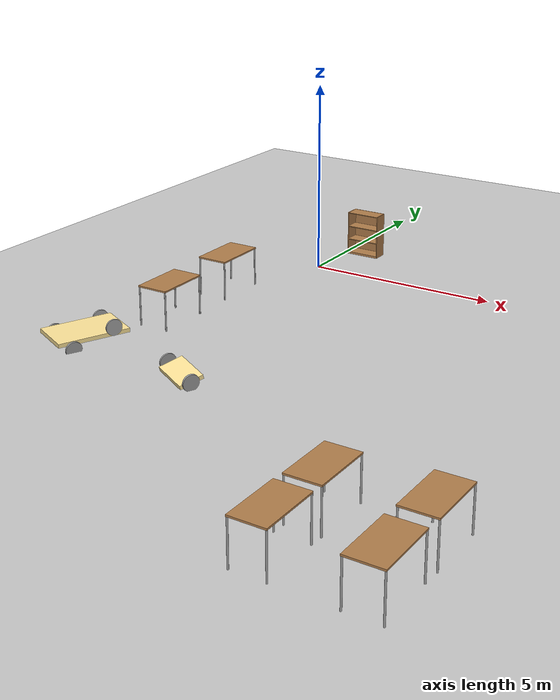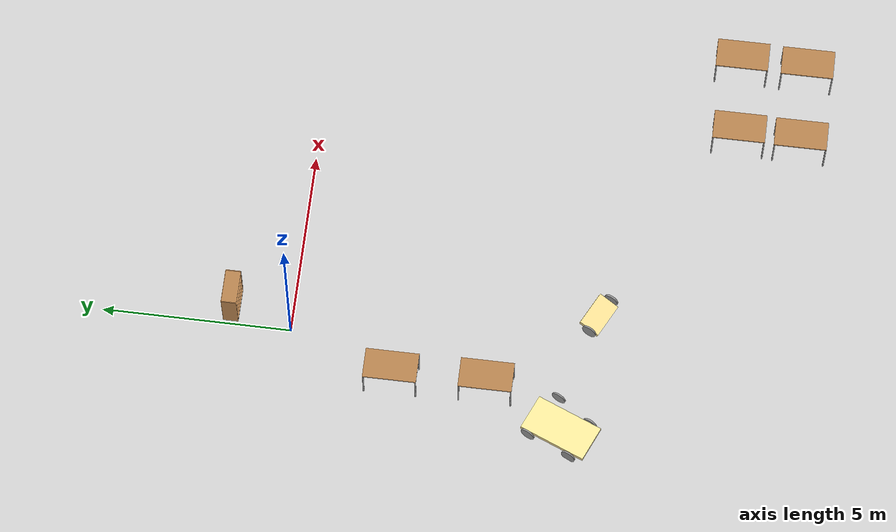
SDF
<sdf version="1.6">
 <world name="default">
  <model name="ground_plane">
   <static>1</static>
   <link name="link">
    <collision name="collision">
     <geometry><plane><normal>0 0 1</normal><size>100 100</size></plane></geometry>
     <surface><friction><ode><mu>100</mu><mu2>50</mu2></ode></friction></surface>
    </collision>
    <visual name="visual">
     <cast_shadows>0</cast_shadows>
     <geometry><plane><normal>0 0 1</normal><size>100 100</size></plane></geometry>
     <material>
      <script><uri>file://media/materials/scripts/gazebo.material</uri><name>Gazebo/Grey</name></script>
     </material>
    </visual>
   </link>
  </model>
  <model name="table_0">
   <static>0</static>
   <link name="link">
    <collision name="surface">
     <pose>0 0 1 0 -0 0</pose>
     <geometry><box><size>1.5 0.8 0.03</size></box></geometry>
     <surface><friction><ode><mu>0.6</mu><mu2>0.6</mu2></ode></friction></surface>
    </collision>
    <visual name="visual1">
     <pose>0 0 1 0 -0 0</pose>
     <geometry><box><size>1.4 0.8 0.04</size></box></geometry>
     <material>
      <script><uri>file://media/materials/scripts/gazebo.material</uri><name>Gazebo/Wood</name></script>
     </material>
    </visual>
    <collision name="front_left_leg">
     <pose>0.68 0.38 0.5 0 -0 0</pose>
     <geometry><cylinder><radius>0.02</radius><length>1</length></cylinder></geometry>
    </collision>
    <visual name="front_left_leg">
     <pose>0.68 0.38 0.5 0 -0 0</pose>
     <geometry><cylinder><radius>0.02</radius><length>1</length></cylinder></geometry>
     <material>
      <script><uri>file://media/materials/scripts/gazebo.material</uri><name>Gazebo/Grey</name></script>
     </material>
    </visual>
    <collision name="front_right_leg">
     <pose>0.68 -0.38 0.5 0 -0 0</pose>
     <geometry><cylinder><radius>0.02</radius><length>1</length></cylinder></geometry>
    </collision>
    <visual name="front_right_leg">
     <pose>0.68 -0.38 0.5 0 -0 0</pose>
     <geometry><cylinder><radius>0.02</radius><length>1</length></cylinder></geometry>
     <material>
      <script><uri>file://media/materials/scripts/gazebo.material</uri><name>Gazebo/Grey</name></script>
     </material>
    </visual>
    <collision name="back_right_leg">
     <pose>-0.68 -0.38 0.5 0 -0 0</pose>
     <geometry><cylinder><radius>0.02</radius><length>1</length></cylinder></geometry>
    </collision>
    <visual name="back_right_leg">
     <pose>-0.68 -0.38 0.5 0 -0 0</pose>
     <geometry><cylinder><radius>0.02</radius><length>1</length></cylinder></geometry>
     <material>
      <script><uri>file://media/materials/scripts/gazebo.material</uri><name>Gazebo/Grey</name></script>
     </material>
    </visual>
    <collision name="back_left_leg">
     <pose>-0.68 0.38 0.5 0 -0 0</pose>
     <geometry><cylinder><radius>0.02</radius><length>1</length></cylinder></geometry>
    </collision>
    <visual name="back_left_leg">
     <pose>-0.68 0.38 0.5 0 -0 0</pose>
     <geometry><cylinder><radius>0.02</radius><length>1</length></cylinder></geometry>
     <material>
      <script><uri>file://media/materials/scripts/gazebo.material</uri><name>Gazebo/Grey</name></script>
     </material>
    </visual>
    <inertial>
     <inertia><ixx>1</ixx><ixy>0</ixy><ixz>0</ixz><iyy>1</iyy><iyz>0</iyz><izz>1</izz></inertia>
     <mass>1</mass>
    </inertial>
   </link>
   <pose>6.80129 -12.7689 -8e-06 1e-06 -0 1.57079</pose>
  </model>
  <model name="table_0_clone">
   <static>0</static>
   <link name="link">
    <collision name="surface">
     <pose>0 0 1 0 -0 0</pose>
     <geometry><box><size>1.5 0.8 0.03</size></box></geometry>
     <surface><friction><ode><mu>0.6</mu><mu2>0.6</mu2></ode></friction></surface>
    </collision>
    <visual name="visual1">
     <pose>0 0 1 0 -0 0</pose>
     <geometry><box><size>1.4 0.8 0.04</size></box></geometry>
     <material>
      <script><uri>file://media/materials/scripts/gazebo.material</uri><name>Gazebo/Wood</name></script>
     </material>
    </visual>
    <collision name="front_left_leg">
     <pose>0.68 0.38 0.5 0 -0 0</pose>
     <geometry><cylinder><radius>0.02</radius><length>1</length></cylinder></geometry>
    </collision>
    <visual name="front_left_leg">
     <pose>0.68 0.38 0.5 0 -0 0</pose>
     <geometry><cylinder><radius>0.02</radius><length>1</length></cylinder></geometry>
     <material>
      <script><uri>file://media/materials/scripts/gazebo.material</uri><name>Gazebo/Grey</name></script>
     </material>
    </visual>
    <collision name="front_right_leg">
     <pose>0.68 -0.38 0.5 0 -0 0</pose>
     <geometry><cylinder><radius>0.02</radius><length>1</length></cylinder></geometry>
    </collision>
    <visual name="front_right_leg">
     <pose>0.68 -0.38 0.5 0 -0 0</pose>
     <geometry><cylinder><radius>0.02</radius><length>1</length></cylinder></geometry>
     <material>
      <script><uri>file://media/materials/scripts/gazebo.material</uri><name>Gazebo/Grey</name></script>
     </material>
    </visual>
    <collision name="back_right_leg">
     <pose>-0.68 -0.38 0.5 0 -0 0</pose>
     <geometry><cylinder><radius>0.02</radius><length>1</length></cylinder></geometry>
    </collision>
    <visual name="back_right_leg">
     <pose>-0.68 -0.38 0.5 0 -0 0</pose>
     <geometry><cylinder><radius>0.02</radius><length>1</length></cylinder></geometry>
     <material>
      <script><uri>file://media/materials/scripts/gazebo.material</uri><name>Gazebo/Grey</name></script>
     </material>
    </visual>
    <collision name="back_left_leg">
     <pose>-0.68 0.38 0.5 0 -0 0</pose>
     <geometry><cylinder><radius>0.02</radius><length>1</length></cylinder></geometry>
    </collision>
    <visual name="back_left_leg">
     <pose>-0.68 0.38 0.5 0 -0 0</pose>
     <geometry><cylinder><radius>0.02</radius><length>1</length></cylinder></geometry>
     <material>
      <script><uri>file://media/materials/scripts/gazebo.material</uri><name>Gazebo/Grey</name></script>
     </material>
    </visual>
    <inertial>
     <inertia><ixx>1</ixx><ixy>0</ixy><ixz>0</ixz><iyy>1</iyy><iyz>0</iyz><izz>1</izz></inertia>
     <mass>1</mass>
    </inertial>
   </link>
   <pose>8.92757 -12.769 0 -1e-06 -0 1.57079</pose>
  </model>
  <model name="table_0_clone_0_clone_0">
   <static>0</static>
   <link name="link">
    <collision name="surface">
     <pose>0 0 1 0 -0 0</pose>
     <geometry><box><size>1.5 0.8 0.03</size></box></geometry>
     <surface><friction><ode><mu>0.6</mu><mu2>0.6</mu2></ode></friction></surface>
    </collision>
    <visual name="visual1">
     <pose>0 0 1 0 -0 0</pose>
     <geometry><box><size>1.4 0.8 0.04</size></box></geometry>
     <material>
      <script><uri>file://media/materials/scripts/gazebo.material</uri><name>Gazebo/Wood</name></script>
     </material>
    </visual>
    <collision name="front_left_leg">
     <pose>0.68 0.38 0.5 0 -0 0</pose>
     <geometry><cylinder><radius>0.02</radius><length>1</length></cylinder></geometry>
    </collision>
    <visual name="front_left_leg">
     <pose>0.68 0.38 0.5 0 -0 0</pose>
     <geometry><cylinder><radius>0.02</radius><length>1</length></cylinder></geometry>
     <material>
      <script><uri>file://media/materials/scripts/gazebo.material</uri><name>Gazebo/Grey</name></script>
     </material>
    </visual>
    <collision name="front_right_leg">
     <pose>0.68 -0.38 0.5 0 -0 0</pose>
     <geometry><cylinder><radius>0.02</radius><length>1</length></cylinder></geometry>
    </collision>
    <visual name="front_right_leg">
     <pose>0.68 -0.38 0.5 0 -0 0</pose>
     <geometry><cylinder><radius>0.02</radius><length>1</length></cylinder></geometry>
     <material>
      <script><uri>file://media/materials/scripts/gazebo.material</uri><name>Gazebo/Grey</name></script>
     </material>
    </visual>
    <collision name="back_right_leg">
     <pose>-0.68 -0.38 0.5 0 -0 0</pose>
     <geometry><cylinder><radius>0.02</radius><length>1</length></cylinder></geometry>
    </collision>
    <visual name="back_right_leg">
     <pose>-0.68 -0.38 0.5 0 -0 0</pose>
     <geometry><cylinder><radius>0.02</radius><length>1</length></cylinder></geometry>
     <material>
      <script><uri>file://media/materials/scripts/gazebo.material</uri><name>Gazebo/Grey</name></script>
     </material>
    </visual>
    <collision name="back_left_leg">
     <pose>-0.68 0.38 0.5 0 -0 0</pose>
     <geometry><cylinder><radius>0.02</radius><length>1</length></cylinder></geometry>
    </collision>
    <visual name="back_left_leg">
     <pose>-0.68 0.38 0.5 0 -0 0</pose>
     <geometry><cylinder><radius>0.02</radius><length>1</length></cylinder></geometry>
     <material>
      <script><uri>file://media/materials/scripts/gazebo.material</uri><name>Gazebo/Grey</name></script>
     </material>
    </visual>
    <inertial>
     <inertia><ixx>1</ixx><ixy>0</ixy><ixz>0</ixz><iyy>1</iyy><iyz>0</iyz><izz>1</izz></inertia>
     <mass>1</mass>
    </inertial>
   </link>
   <pose>8.95558 -11.0209 -1e-05 -1e-06 -0 1.57081</pose>
  </model>
  <model name="table_0_clone_0_clone_0_clone">
   <static>0</static>
   <link name="link">
    <collision name="surface">
     <pose>0 0 1 0 -0 0</pose>
     <geometry><box><size>1.5 0.8 0.03</size></box></geometry>
     <surface><friction><ode><mu>0.6</mu><mu2>0.6</mu2></ode></friction></surface>
    </collision>
    <visual name="visual1">
     <pose>0 0 1 0 -0 0</pose>
     <geometry><box><size>1.4 0.8 0.04</size></box></geometry>
     <material>
      <script><uri>file://media/materials/scripts/gazebo.material</uri><name>Gazebo/Wood</name></script>
     </material>
    </visual>
    <collision name="front_left_leg">
     <pose>0.68 0.38 0.5 0 -0 0</pose>
     <geometry><cylinder><radius>0.02</radius><length>1</length></cylinder></geometry>
    </collision>
    <visual name="front_left_leg">
     <pose>0.68 0.38 0.5 0 -0 0</pose>
     <geometry><cylinder><radius>0.02</radius><length>1</length></cylinder></geometry>
     <material>
      <script><uri>file://media/materials/scripts/gazebo.material</uri><name>Gazebo/Grey</name></script>
     </material>
    </visual>
    <collision name="front_right_leg">
     <pose>0.68 -0.38 0.5 0 -0 0</pose>
     <geometry><cylinder><radius>0.02</radius><length>1</length></cylinder></geometry>
    </collision>
    <visual name="front_right_leg">
     <pose>0.68 -0.38 0.5 0 -0 0</pose>
     <geometry><cylinder><radius>0.02</radius><length>1</length></cylinder></geometry>
     <material>
      <script><uri>file://media/materials/scripts/gazebo.material</uri><name>Gazebo/Grey</name></script>
     </material>
    </visual>
    <collision name="back_right_leg">
     <pose>-0.68 -0.38 0.5 0 -0 0</pose>
     <geometry><cylinder><radius>0.02</radius><length>1</length></cylinder></geometry>
    </collision>
    <visual name="back_right_leg">
     <pose>-0.68 -0.38 0.5 0 -0 0</pose>
     <geometry><cylinder><radius>0.02</radius><length>1</length></cylinder></geometry>
     <material>
      <script><uri>file://media/materials/scripts/gazebo.material</uri><name>Gazebo/Grey</name></script>
     </material>
    </visual>
    <collision name="back_left_leg">
     <pose>-0.68 0.38 0.5 0 -0 0</pose>
     <geometry><cylinder><radius>0.02</radius><length>1</length></cylinder></geometry>
    </collision>
    <visual name="back_left_leg">
     <pose>-0.68 0.38 0.5 0 -0 0</pose>
     <geometry><cylinder><radius>0.02</radius><length>1</length></cylinder></geometry>
     <material>
      <script><uri>file://media/materials/scripts/gazebo.material</uri><name>Gazebo/Grey</name></script>
     </material>
    </visual>
    <inertial>
     <inertia><ixx>1</ixx><ixy>0</ixy><ixz>0</ixz><iyy>1</iyy><iyz>0</iyz><izz>1</izz></inertia>
     <mass>1</mass>
    </inertial>
   </link>
   <pose>6.82658 -11.1283 0 0 -0 1.57</pose>
  </model>
  <model name="table_3_clone_clone_clone_0">
   <static>0</static>
   <link name="link">
    <collision name="surface">
     <pose>0 0 1 0 -0 0</pose>
     <geometry><box><size>1.5 0.8 0.03</size></box></geometry>
     <surface><friction><ode><mu>0.6</mu><mu2>0.6</mu2></ode></friction></surface>
    </collision>
    <visual name="visual1">
     <pose>0 0 1 0 -0 0</pose>
     <geometry><box><size>1.4 0.8 0.04</size></box></geometry>
     <material>
      <script><uri>file://media/materials/scripts/gazebo.material</uri><name>Gazebo/Wood</name></script>
     </material>
    </visual>
    <collision name="front_left_leg">
     <pose>0.68 0.38 0.5 0 -0 0</pose>
     <geometry><cylinder><radius>0.02</radius><length>1</length></cylinder></geometry>
    </collision>
    <visual name="front_left_leg">
     <pose>0.68 0.38 0.5 0 -0 0</pose>
     <geometry><cylinder><radius>0.02</radius><length>1</length></cylinder></geometry>
     <material>
      <script><uri>file://media/materials/scripts/gazebo.material</uri><name>Gazebo/Grey</name></script>
     </material>
    </visual>
    <collision name="front_right_leg">
     <pose>0.68 -0.38 0.5 0 -0 0</pose>
     <geometry><cylinder><radius>0.02</radius><length>1</length></cylinder></geometry>
    </collision>
    <visual name="front_right_leg">
     <pose>0.68 -0.38 0.5 0 -0 0</pose>
     <geometry><cylinder><radius>0.02</radius><length>1</length></cylinder></geometry>
     <material>
      <script><uri>file://media/materials/scripts/gazebo.material</uri><name>Gazebo/Grey</name></script>
     </material>
    </visual>
    <collision name="back_right_leg">
     <pose>-0.68 -0.38 0.5 0 -0 0</pose>
     <geometry><cylinder><radius>0.02</radius><length>1</length></cylinder></geometry>
    </collision>
    <visual name="back_right_leg">
     <pose>-0.68 -0.38 0.5 0 -0 0</pose>
     <geometry><cylinder><radius>0.02</radius><length>1</length></cylinder></geometry>
     <material>
      <script><uri>file://media/materials/scripts/gazebo.material</uri><name>Gazebo/Grey</name></script>
     </material>
    </visual>
    <collision name="back_left_leg">
     <pose>-0.68 0.38 0.5 0 -0 0</pose>
     <geometry><cylinder><radius>0.02</radius><length>1</length></cylinder></geometry>
    </collision>
    <visual name="back_left_leg">
     <pose>-0.68 0.38 0.5 0 -0 0</pose>
     <geometry><cylinder><radius>0.02</radius><length>1</length></cylinder></geometry>
     <material>
      <script><uri>file://media/materials/scripts/gazebo.material</uri><name>Gazebo/Grey</name></script>
     </material>
    </visual>
    <inertial>
     <inertia><ixx>1</ixx><ixy>0</ixy><ixz>0</ixz><iyy>1</iyy><iyz>0</iyz><izz>1</izz></inertia>
     <mass>1</mass>
    </inertial>
   </link>
   <pose>-1.06802 -2.7824 -4e-06 -2e-06 4e-06 1.57015</pose>
  </model>
  <model name="table_3_clone_clone_clone_0_clone">
   <static>0</static>
   <link name="link">
    <collision name="surface">
     <pose>0 0 1 0 -0 0</pose>
     <geometry><box><size>1.5 0.8 0.03</size></box></geometry>
     <surface><friction><ode><mu>0.6</mu><mu2>0.6</mu2></ode></friction></surface>
    </collision>
    <visual name="visual1">
     <pose>0 0 1 0 -0 0</pose>
     <geometry><box><size>1.4 0.8 0.04</size></box></geometry>
     <material>
      <script><uri>file://media/materials/scripts/gazebo.material</uri><name>Gazebo/Wood</name></script>
     </material>
    </visual>
    <collision name="front_left_leg">
     <pose>0.68 0.38 0.5 0 -0 0</pose>
     <geometry><cylinder><radius>0.02</radius><length>1</length></cylinder></geometry>
    </collision>
    <visual name="front_left_leg">
     <pose>0.68 0.38 0.5 0 -0 0</pose>
     <geometry><cylinder><radius>0.02</radius><length>1</length></cylinder></geometry>
     <material>
      <script><uri>file://media/materials/scripts/gazebo.material</uri><name>Gazebo/Grey</name></script>
     </material>
    </visual>
    <collision name="front_right_leg">
     <pose>0.68 -0.38 0.5 0 -0 0</pose>
     <geometry><cylinder><radius>0.02</radius><length>1</length></cylinder></geometry>
    </collision>
    <visual name="front_right_leg">
     <pose>0.68 -0.38 0.5 0 -0 0</pose>
     <geometry><cylinder><radius>0.02</radius><length>1</length></cylinder></geometry>
     <material>
      <script><uri>file://media/materials/scripts/gazebo.material</uri><name>Gazebo/Grey</name></script>
     </material>
    </visual>
    <collision name="back_right_leg">
     <pose>-0.68 -0.38 0.5 0 -0 0</pose>
     <geometry><cylinder><radius>0.02</radius><length>1</length></cylinder></geometry>
    </collision>
    <visual name="back_right_leg">
     <pose>-0.68 -0.38 0.5 0 -0 0</pose>
     <geometry><cylinder><radius>0.02</radius><length>1</length></cylinder></geometry>
     <material>
      <script><uri>file://media/materials/scripts/gazebo.material</uri><name>Gazebo/Grey</name></script>
     </material>
    </visual>
    <collision name="back_left_leg">
     <pose>-0.68 0.38 0.5 0 -0 0</pose>
     <geometry><cylinder><radius>0.02</radius><length>1</length></cylinder></geometry>
    </collision>
    <visual name="back_left_leg">
     <pose>-0.68 0.38 0.5 0 -0 0</pose>
     <geometry><cylinder><radius>0.02</radius><length>1</length></cylinder></geometry>
     <material>
      <script><uri>file://media/materials/scripts/gazebo.material</uri><name>Gazebo/Grey</name></script>
     </material>
    </visual>
    <inertial>
     <inertia><ixx>1</ixx><ixy>0</ixy><ixz>0</ixz><iyy>1</iyy><iyz>0</iyz><izz>1</izz></inertia>
     <mass>1</mass>
    </inertial>
   </link>
   <pose>-1.03399 -5.26338 -9e-06 1e-06 -1e-06 1.57001</pose>
  </model>
  <model name="bookshelf">
   <static>1</static>
   <link name="link">
    <inertial><mass>1</mass></inertial>
    <collision name="back">
     <pose>0 0.005 0.6 0 -0 0</pose>
     <geometry><box><size>0.9 0.01 1.2</size></box></geometry>
    </collision>
    <visual name="visual1">
     <pose>0 0.005 0.6 0 -0 0</pose>
     <geometry><box><size>0.9 0.01 1.2</size></box></geometry>
     <material>
      <script><uri>file://media/materials/scripts/gazebo.material</uri><name>Gazebo/Wood</name></script>
     </material>
    </visual>
    <collision name="left_side">
     <pose>0.45 -0.195 0.6 0 -0 0</pose>
     <geometry><box><size>0.02 0.4 1.2</size></box></geometry>
    </collision>
    <visual name="visual2">
     <pose>0.45 -0.195 0.6 0 -0 0</pose>
     <geometry><box><size>0.02 0.4 1.2</size></box></geometry>
     <material>
      <script><uri>file://media/materials/scripts/gazebo.material</uri><name>Gazebo/Wood</name></script>
     </material>
    </visual>
    <collision name="right_side">
     <pose>-0.45 -0.195 0.6 0 -0 0</pose>
     <geometry><box><size>0.02 0.4 1.2</size></box></geometry>
    </collision>
    <visual name="visual3">
     <pose>-0.45 -0.195 0.6 0 -0 0</pose>
     <geometry><box><size>0.02 0.4 1.2</size></box></geometry>
     <material>
      <script><uri>file://media/materials/scripts/gazebo.material</uri><name>Gazebo/Wood</name></script>
     </material>
    </visual>
    <collision name="bottom">
     <pose>0 -0.195 0.03 0 -0 0</pose>
     <geometry><box><size>0.88 0.4 0.06</size></box></geometry>
    </collision>
    <visual name="visual4">
     <pose>0 -0.195 0.03 0 -0 0</pose>
     <geometry><box><size>0.88 0.4 0.06</size></box></geometry>
     <material>
      <script><uri>file://media/materials/scripts/gazebo.material</uri><name>Gazebo/Wood</name></script>
     </material>
    </visual>
    <collision name="top">
     <pose>0 -0.195 1.19 0 -0 0</pose>
     <geometry><box><size>0.88 0.4 0.02</size></box></geometry>
    </collision>
    <visual name="visual5">
     <pose>0 -0.195 1.19 0 -0 0</pose>
     <geometry><box><size>0.88 0.4 0.02</size></box></geometry>
     <material>
      <script><uri>file://media/materials/scripts/gazebo.material</uri><name>Gazebo/Wood</name></script>
     </material>
    </visual>
    <collision name="low_shelf">
     <pose>0 -0.195 0.43 0 -0 0</pose>
     <geometry><box><size>0.88 0.4 0.02</size></box></geometry>
    </collision>
    <visual name="visual6">
     <pose>0 -0.195 0.43 0 -0 0</pose>
     <geometry><box><size>0.88 0.4 0.02</size></box></geometry>
     <material>
      <script><uri>file://media/materials/scripts/gazebo.material</uri><name>Gazebo/Wood</name></script>
     </material>
    </visual>
    <collision name="high_shelf">
     <pose>0 -0.195 0.8 0 -0 0</pose>
     <geometry><box><size>0.88 0.4 0.02</size></box></geometry>
    </collision>
    <visual name="visual7">
     <pose>0 -0.195 0.8 0 -0 0</pose>
     <geometry><box><size>0.88 0.4 0.02</size></box></geometry>
     <material>
      <script><uri>file://media/materials/scripts/gazebo.material</uri><name>Gazebo/Wood</name></script>
     </material>
    </visual>
   </link>
   <pose>0.557627 1.81001 0 0 -0 0</pose>
  </model>
  <model name="robot">
   <link name="link_0">
    <pose>0.038001 -0.005114 -0.035369 0 -0 0</pose>
    <inertial>
     <mass>3.09864</mass>
     <inertia>
      <ixx>0.260802</ixx>
      <ixy>0</ixy>
      <ixz>0</ixz>
      <iyy>0.090417</iyy>
      <iyz>0</iyz>
      <izz>0.346055</izz>
     </inertia>
    </inertial>
    <visual name="visual">
     <geometry><box><size>0.583228 1 0.1</size></box></geometry>
     <material>
      <lighting>1</lighting>
      <script><uri>file://media/materials/scripts/gazebo.material</uri><name>Gazebo/Grey</name></script>
      <ambient>1 0.9 0.6 1</ambient>
      <diffuse>1 0.9 0.6 1</diffuse>
      <specular>0.01 0.01 0.01 1</specular>
      <emissive>0 0 0 1</emissive>
      <shader type="vertex"><normal_map>__default__</normal_map></shader>
     </material>
    </visual>
    <collision name="collision">
     <geometry><box><size>0.583228 1 0.1</size></box></geometry>
     <surface>
      <friction>
       <ode><mu>1</mu><mu2>1</mu2><fdir1>0 0 0</fdir1><slip1>0</slip1><slip2>0</slip2></ode>
       <torsional>
        <coefficient>1</coefficient>
        <patch_radius>0</patch_radius>
        <surface_radius>0</surface_radius>
        <use_patch_radius>1</use_patch_radius>
        <ode><slip>0</slip></ode>
       </torsional>
      </friction>
      <bounce><restitution_coefficient>0</restitution_coefficient><threshold>1e+06</threshold></bounce>
      <contact>
       <collide_without_contact>0</collide_without_contact>
       <collide_without_contact_bitmask>1</collide_without_contact_bitmask>
       <collide_bitmask>1</collide_bitmask>
       <ode>
        <soft_cfm>0</soft_cfm>
        <soft_erp>0.2</soft_erp>
        <kp>1e+13</kp>
        <kd>1</kd>
        <max_vel>0.01</max_vel>
        <min_depth>0</min_depth>
       </ode>
       <bullet>
        <split_impulse>1</split_impulse>
        <split_impulse_penetration_threshold>-0.01</split_impulse_penetration_threshold>
        <soft_cfm>0</soft_cfm>
        <soft_erp>0.2</soft_erp>
        <kp>1e+13</kp>
        <kd>1</kd>
       </bullet>
      </contact>
     </surface>
    </collision>
   </link>
   <link name="link_1">
    <pose>-0 -0.550019 0 1.5707 -0 0</pose>
    <inertial>
     <mass>0.499601</mass>
     <inertia>
      <ixx>0.00509991</ixx>
      <ixy>0</ixy>
      <ixz>0</ixz>
      <iyy>0.00509991</iyy>
      <iyz>0</iyz>
      <izz>0.00999201</izz>
     </inertia>
    </inertial>
    <visual name="visual">
     <geometry><cylinder><radius>0.2</radius><length>0.049957</length></cylinder></geometry>
     <material>
      <lighting>1</lighting>
      <script><uri>file://media/materials/scripts/gazebo.material</uri><name>Gazebo/Grey</name></script>
      <ambient>0.5 0.5 0.5 1</ambient>
      <diffuse>0.5 0.5 0.5 1</diffuse>
      <specular>0.01 0.01 0.01 1</specular>
      <emissive>0 0 0 1</emissive>
      <shader type="vertex"><normal_map>__default__</normal_map></shader>
     </material>
    </visual>
    <collision name="collision">
     <geometry><cylinder><radius>0.2</radius><length>0.049957</length></cylinder></geometry>
     <surface>
      <friction>
       <ode><mu>1</mu><mu2>1</mu2><fdir1>0 0 0</fdir1><slip1>0</slip1><slip2>0</slip2></ode>
       <torsional>
        <coefficient>1</coefficient>
        <patch_radius>0</patch_radius>
        <surface_radius>0</surface_radius>
        <use_patch_radius>1</use_patch_radius>
        <ode><slip>0</slip></ode>
       </torsional>
      </friction>
      <bounce><restitution_coefficient>0</restitution_coefficient><threshold>1e+06</threshold></bounce>
      <contact>
       <collide_without_contact>0</collide_without_contact>
       <collide_without_contact_bitmask>1</collide_without_contact_bitmask>
       <collide_bitmask>1</collide_bitmask>
       <ode>
        <soft_cfm>0</soft_cfm>
        <soft_erp>0.2</soft_erp>
        <kp>1e+13</kp>
        <kd>1</kd>
        <max_vel>0.01</max_vel>
        <min_depth>0</min_depth>
       </ode>
       <bullet>
        <split_impulse>1</split_impulse>
        <split_impulse_penetration_threshold>-0.01</split_impulse_penetration_threshold>
        <soft_cfm>0</soft_cfm>
        <soft_erp>0.2</soft_erp>
        <kp>1e+13</kp>
        <kd>1</kd>
       </bullet>
      </contact>
     </surface>
    </collision>
   </link>
   <link name="link_1_clone">
    <pose>0 0.550019 -0 1.5707 -0 0</pose>
    <inertial>
     <mass>0.43298</mass>
     <inertia>
      <ixx>0.00439744</ixx>
      <ixy>0</ixy>
      <ixz>0</ixz>
      <iyy>0.00439744</iyy>
      <iyz>0</iyz>
      <izz>0.00865959</izz>
     </inertia>
    </inertial>
    <visual name="visual">
     <geometry><cylinder><radius>0.2</radius><length>0.0432982</length></cylinder></geometry>
     <material>
      <lighting>1</lighting>
      <script><uri>file://media/materials/scripts/gazebo.material</uri><name>Gazebo/Grey</name></script>
      <ambient>0.5 0.5 0.5 1</ambient>
      <diffuse>0.5 0.5 0.5 1</diffuse>
      <specular>0.01 0.01 0.01 1</specular>
      <emissive>0 0 0 1</emissive>
      <shader type="vertex"><normal_map>__default__</normal_map></shader>
     </material>
    </visual>
    <collision name="collision">
     <geometry><cylinder><radius>0.2</radius><length>0.043298</length></cylinder></geometry>
     <surface>
      <friction>
       <ode><mu>1</mu><mu2>1</mu2><fdir1>0 0 0</fdir1><slip1>0</slip1><slip2>0</slip2></ode>
       <torsional>
        <coefficient>1</coefficient>
        <patch_radius>0</patch_radius>
        <surface_radius>0</surface_radius>
        <use_patch_radius>1</use_patch_radius>
        <ode><slip>0</slip></ode>
       </torsional>
      </friction>
      <bounce><restitution_coefficient>0</restitution_coefficient><threshold>1e+06</threshold></bounce>
      <contact>
       <collide_without_contact>0</collide_without_contact>
       <collide_without_contact_bitmask>1</collide_without_contact_bitmask>
       <collide_bitmask>1</collide_bitmask>
       <ode>
        <soft_cfm>0</soft_cfm>
        <soft_erp>0.2</soft_erp>
        <kp>1e+13</kp>
        <kd>1</kd>
        <max_vel>0.01</max_vel>
        <min_depth>0</min_depth>
       </ode>
       <bullet>
        <split_impulse>1</split_impulse>
        <split_impulse_penetration_threshold>-0.01</split_impulse_penetration_threshold>
        <soft_cfm>0</soft_cfm>
        <soft_erp>0.2</soft_erp>
        <kp>1e+13</kp>
        <kd>1</kd>
       </bullet>
      </contact>
     </surface>
    </collision>
   </link>
   <joint name="link_0_JOINT_0" type="revolute">
    <parent>link_0</parent>
    <child>link_1</child>
    <axis>
     <xyz>0 0 1</xyz>
     <use_parent_model_frame>0</use_parent_model_frame>
     <limit>
      <lower>-1.79769e+308</lower>
      <upper>1.79769e+308</upper>
      <effort>-1</effort>
      <velocity>-1</velocity>
     </limit>
     <dynamics>
      <spring_reference>0</spring_reference>
      <spring_stiffness>0</spring_stiffness>
      <damping>0</damping>
      <friction>0</friction>
     </dynamics>
    </axis>
    <physics>
     <ode><limit><cfm>0</cfm><erp>0.2</erp></limit><suspension><cfm>0</cfm><erp>0.2</erp></suspension></ode>
    </physics>
   </joint>
   <joint name="link_0_JOINT_1" type="revolute">
    <parent>link_0</parent>
    <child>link_1_clone</child>
    <axis>
     <xyz>0 0 1</xyz>
     <use_parent_model_frame>0</use_parent_model_frame>
     <limit>
      <lower>-1.79769e+308</lower>
      <upper>1.79769e+308</upper>
      <effort>-1</effort>
      <velocity>-1</velocity>
     </limit>
     <dynamics>
      <spring_reference>0</spring_reference>
      <spring_stiffness>0</spring_stiffness>
      <damping>0</damping>
      <friction>0</friction>
     </dynamics>
    </axis>
    <physics>
     <ode><limit><cfm>0</cfm><erp>0.2</erp></limit><suspension><cfm>0</cfm><erp>0.2</erp></suspension></ode>
    </physics>
   </joint>
   <static>0</static>
   <pose>1.3065 -8.00519 0.200004 0.080586 -0.258421 1.09536</pose>
  </model>
  <model name="asphalt_plane">
   <pose>-0.102711 -1.62286 0 0 -0 0</pose>
   <scale>1 1 1</scale>
   <link name="link">
    <pose>-0.102711 -1.62286 0 0 -0 0</pose>
    <velocity>0 0 0 0 -0 0</velocity>
    <acceleration>0 0 0 0 -0 0</acceleration>
    <wrench>0 0 0 0 -0 0</wrench>
   </link>
  </model>
  <model name="bookshelf">
   <pose>0.557627 1.81001 0 0 -0 0</pose>
   <scale>1 1 1</scale>
   <link name="link">
    <pose>-0.561985 1.16083 0 0 -0 0</pose>
    <velocity>0 0 0 0 -0 0</velocity>
    <acceleration>0 0 0 0 -0 0</acceleration>
    <wrench>0 0 0 0 -0 0</wrench>
   </link>
  </model>
  <model name="wheely">
   <link name="link_0">
    <pose>-0.050655 0.038805 -0.014544 1e-06 0.271798 0.057206</pose>
    <inertial>
     <mass>9.70976</mass>
     <inertia><ixx>0.817238</ixx><ixy>0</ixy><ixz>0</ixz><iyy>2.71066</iyy><iyz>0</iyz><izz>3.51172</izz></inertia>
    </inertial>
    <visual name="visual">
     <geometry><box><size>1.82757 1 0.1</size></box></geometry>
     <material>
      <lighting>1</lighting>
      <script><uri>file://media/materials/scripts/gazebo.material</uri><name>Gazebo/Grey</name></script>
      <ambient>1 0.9 0.6 1</ambient>
      <diffuse>1 0.9 0.6 1</diffuse>
      <specular>0.01 0.01 0.01 1</specular>
      <emissive>0 0 0 1</emissive>
      <shader type="vertex"><normal_map>__default__</normal_map></shader>
     </material>
    </visual>
    <collision name="collision">
     <geometry><box><size>1.82757 1 0.1</size></box></geometry>
     <surface>
      <friction>
       <ode><mu>1</mu><mu2>1</mu2><fdir1>0 0 0</fdir1><slip1>0</slip1><slip2>0</slip2></ode>
       <torsional>
        <coefficient>1</coefficient>
        <patch_radius>0</patch_radius>
        <surface_radius>0</surface_radius>
        <use_patch_radius>1</use_patch_radius>
        <ode><slip>0</slip></ode>
       </torsional>
      </friction>
      <bounce><restitution_coefficient>0</restitution_coefficient><threshold>1e+06</threshold></bounce>
      <contact>
       <collide_without_contact>0</collide_without_contact>
       <collide_without_contact_bitmask>1</collide_without_contact_bitmask>
       <collide_bitmask>1</collide_bitmask>
       <ode>
        <soft_cfm>0</soft_cfm>
        <soft_erp>0.2</soft_erp>
        <kp>1e+13</kp>
        <kd>1</kd>
        <max_vel>0.01</max_vel>
        <min_depth>0</min_depth>
       </ode>
       <bullet>
        <split_impulse>1</split_impulse>
        <split_impulse_penetration_threshold>-0.01</split_impulse_penetration_threshold>
        <soft_cfm>0</soft_cfm>
        <soft_erp>0.2</soft_erp>
        <kp>1e+13</kp>
        <kd>1</kd>
       </bullet>
      </contact>
     </surface>
    </collision>
   </link>
   <link name="link_1">
    <pose>-0.596107 -0.550019 -0 1.5707 -0 0</pose>
    <inertial>
     <mass>0.499601</mass>
     <inertia>
      <ixx>0.00509991</ixx>
      <ixy>0</ixy>
      <ixz>0</ixz>
      <iyy>0.00509991</iyy>
      <iyz>0</iyz>
      <izz>0.00999201</izz>
     </inertia>
    </inertial>
    <visual name="visual">
     <geometry><cylinder><radius>0.2</radius><length>0.049957</length></cylinder></geometry>
     <material>
      <lighting>1</lighting>
      <script><uri>file://media/materials/scripts/gazebo.material</uri><name>Gazebo/Grey</name></script>
      <ambient>0.5 0.5 0.5 1</ambient>
      <diffuse>0.5 0.5 0.5 1</diffuse>
      <specular>0.01 0.01 0.01 1</specular>
      <emissive>0 0 0 1</emissive>
      <shader type="vertex"><normal_map>__default__</normal_map></shader>
     </material>
    </visual>
    <collision name="collision">
     <geometry><cylinder><radius>0.2</radius><length>0.049957</length></cylinder></geometry>
     <surface>
      <friction>
       <ode><mu>1</mu><mu2>1</mu2><fdir1>0 0 0</fdir1><slip1>0</slip1><slip2>0</slip2></ode>
       <torsional>
        <coefficient>1</coefficient>
        <patch_radius>0</patch_radius>
        <surface_radius>0</surface_radius>
        <use_patch_radius>1</use_patch_radius>
        <ode><slip>0</slip></ode>
       </torsional>
      </friction>
      <bounce><restitution_coefficient>0</restitution_coefficient><threshold>1e+06</threshold></bounce>
      <contact>
       <collide_without_contact>0</collide_without_contact>
       <collide_without_contact_bitmask>1</collide_without_contact_bitmask>
       <collide_bitmask>1</collide_bitmask>
       <ode>
        <soft_cfm>0</soft_cfm>
        <soft_erp>0.2</soft_erp>
        <kp>1e+13</kp>
        <kd>1</kd>
        <max_vel>0.01</max_vel>
        <min_depth>0</min_depth>
       </ode>
       <bullet>
        <split_impulse>1</split_impulse>
        <split_impulse_penetration_threshold>-0.01</split_impulse_penetration_threshold>
        <soft_cfm>0</soft_cfm>
        <soft_erp>0.2</soft_erp>
        <kp>1e+13</kp>
        <kd>1</kd>
       </bullet>
      </contact>
     </surface>
    </collision>
   </link>
   <link name="link_1_clone">
    <pose>-0.61948 0.550019 0 1.5707 -0 0</pose>
    <inertial>
     <mass>0.43298</mass>
     <inertia>
      <ixx>0.00439744</ixx>
      <ixy>0</ixy>
      <ixz>0</ixz>
      <iyy>0.00439744</iyy>
      <iyz>0</iyz>
      <izz>0.00865959</izz>
     </inertia>
    </inertial>
    <visual name="visual">
     <geometry><cylinder><radius>0.2</radius><length>0.0432982</length></cylinder></geometry>
     <material>
      <lighting>1</lighting>
      <script><uri>file://media/materials/scripts/gazebo.material</uri><name>Gazebo/Grey</name></script>
      <ambient>0.5 0.5 0.5 1</ambient>
      <diffuse>0.5 0.5 0.5 1</diffuse>
      <specular>0.01 0.01 0.01 1</specular>
      <emissive>0 0 0 1</emissive>
      <shader type="vertex"><normal_map>__default__</normal_map></shader>
     </material>
    </visual>
    <collision name="collision">
     <geometry><cylinder><radius>0.2</radius><length>0.043298</length></cylinder></geometry>
     <surface>
      <friction>
       <ode><mu>1</mu><mu2>1</mu2><fdir1>0 0 0</fdir1><slip1>0</slip1><slip2>0</slip2></ode>
       <torsional>
        <coefficient>1</coefficient>
        <patch_radius>0</patch_radius>
        <surface_radius>0</surface_radius>
        <use_patch_radius>1</use_patch_radius>
        <ode><slip>0</slip></ode>
       </torsional>
      </friction>
      <bounce><restitution_coefficient>0</restitution_coefficient><threshold>1e+06</threshold></bounce>
      <contact>
       <collide_without_contact>0</collide_without_contact>
       <collide_without_contact_bitmask>1</collide_without_contact_bitmask>
       <collide_bitmask>1</collide_bitmask>
       <ode>
        <soft_cfm>0</soft_cfm>
        <soft_erp>0.2</soft_erp>
        <kp>1e+13</kp>
        <kd>1</kd>
        <max_vel>0.01</max_vel>
        <min_depth>0</min_depth>
       </ode>
       <bullet>
        <split_impulse>1</split_impulse>
        <split_impulse_penetration_threshold>-0.01</split_impulse_penetration_threshold>
        <soft_cfm>0</soft_cfm>
        <soft_erp>0.2</soft_erp>
        <kp>1e+13</kp>
        <kd>1</kd>
       </bullet>
      </contact>
     </surface>
    </collision>
   </link>
   <link name="link_1_clone_clone">
    <pose>0.460007 -0.573936 0.098437 1.5 -0 0</pose>
    <inertial>
     <mass>0.43298</mass>
     <inertia>
      <ixx>0.00439744</ixx>
      <ixy>0</ixy>
      <ixz>0</ixz>
      <iyy>0.00439744</iyy>
      <iyz>0</iyz>
      <izz>0.00865959</izz>
     </inertia>
    </inertial>
    <visual name="visual">
     <geometry><cylinder><radius>0.2</radius><length>0.0432982</length></cylinder></geometry>
     <material>
      <lighting>1</lighting>
      <script><uri>file://media/materials/scripts/gazebo.material</uri><name>Gazebo/Grey</name></script>
      <ambient>0.5 0.5 0.5 1</ambient>
      <diffuse>0.5 0.5 0.5 1</diffuse>
      <specular>0.01 0.01 0.01 1</specular>
      <emissive>0 0 0 1</emissive>
      <shader type="vertex"><normal_map>__default__</normal_map></shader>
     </material>
    </visual>
    <collision name="collision">
     <geometry><cylinder><radius>0.2</radius><length>0.043298</length></cylinder></geometry>
     <surface>
      <friction>
       <ode><mu>1</mu><mu2>1</mu2><fdir1>0 0 0</fdir1><slip1>0</slip1><slip2>0</slip2></ode>
       <torsional>
        <coefficient>1</coefficient>
        <patch_radius>0</patch_radius>
        <surface_radius>0</surface_radius>
        <use_patch_radius>1</use_patch_radius>
        <ode><slip>0</slip></ode>
       </torsional>
      </friction>
      <bounce><restitution_coefficient>0</restitution_coefficient><threshold>1e+06</threshold></bounce>
      <contact>
       <collide_without_contact>0</collide_without_contact>
       <collide_without_contact_bitmask>1</collide_without_contact_bitmask>
       <collide_bitmask>1</collide_bitmask>
       <ode>
        <soft_cfm>0</soft_cfm>
        <soft_erp>0.2</soft_erp>
        <kp>1e+13</kp>
        <kd>1</kd>
        <max_vel>0.01</max_vel>
        <min_depth>0</min_depth>
       </ode>
       <bullet>
        <split_impulse>1</split_impulse>
        <split_impulse_penetration_threshold>-0.01</split_impulse_penetration_threshold>
        <soft_cfm>0</soft_cfm>
        <soft_erp>0.2</soft_erp>
        <kp>1e+13</kp>
        <kd>1</kd>
       </bullet>
      </contact>
     </surface>
    </collision>
   </link>
   <link name="link_1_clone_clone_clone_0">
    <pose>0.552681 0.62579 -0.239322 1.5 -0 0</pose>
    <inertial>
     <mass>0.43298</mass>
     <inertia>
      <ixx>0.00439744</ixx>
      <ixy>0</ixy>
      <ixz>0</ixz>
      <iyy>0.00439744</iyy>
      <iyz>0</iyz>
      <izz>0.00865959</izz>
     </inertia>
    </inertial>
    <visual name="visual">
     <geometry><cylinder><radius>0.2</radius><length>0.0432982</length></cylinder></geometry>
     <material>
      <lighting>1</lighting>
      <script><uri>file://media/materials/scripts/gazebo.material</uri><name>Gazebo/Grey</name></script>
      <ambient>0.5 0.5 0.5 1</ambient>
      <diffuse>0.5 0.5 0.5 1</diffuse>
      <specular>0.01 0.01 0.01 1</specular>
      <emissive>0 0 0 1</emissive>
      <shader type="vertex"><normal_map>__default__</normal_map></shader>
     </material>
    </visual>
    <collision name="collision">
     <geometry><cylinder><radius>0.2</radius><length>0.043298</length></cylinder></geometry>
     <surface>
      <friction>
       <ode><mu>1</mu><mu2>1</mu2><fdir1>0 0 0</fdir1><slip1>0</slip1><slip2>0</slip2></ode>
       <torsional>
        <coefficient>1</coefficient>
        <patch_radius>0</patch_radius>
        <surface_radius>0</surface_radius>
        <use_patch_radius>1</use_patch_radius>
        <ode><slip>0</slip></ode>
       </torsional>
      </friction>
      <bounce><restitution_coefficient>0</restitution_coefficient><threshold>1e+06</threshold></bounce>
      <contact>
       <collide_without_contact>0</collide_without_contact>
       <collide_without_contact_bitmask>1</collide_without_contact_bitmask>
       <collide_bitmask>1</collide_bitmask>
       <ode>
        <soft_cfm>0</soft_cfm>
        <soft_erp>0.2</soft_erp>
        <kp>1e+13</kp>
        <kd>1</kd>
        <max_vel>0.01</max_vel>
        <min_depth>0</min_depth>
       </ode>
       <bullet>
        <split_impulse>1</split_impulse>
        <split_impulse_penetration_threshold>-0.01</split_impulse_penetration_threshold>
        <soft_cfm>0</soft_cfm>
        <soft_erp>0.2</soft_erp>
        <kp>1e+13</kp>
        <kd>1</kd>
       </bullet>
      </contact>
     </surface>
    </collision>
   </link>
   <joint name="link_0_JOINT_0_0" type="revolute">
    <parent>link_0</parent>
    <child>link_1_clone_clone_clone_0</child>
    <axis>
     <xyz>1 0 0</xyz>
     <use_parent_model_frame>0</use_parent_model_frame>
     <limit>
      <lower>-1.79769e+308</lower>
      <upper>1.79769e+308</upper>
      <effort>-1</effort>
      <velocity>-1</velocity>
     </limit>
     <dynamics>
      <spring_reference>0</spring_reference>
      <spring_stiffness>0</spring_stiffness>
      <damping>0</damping>
     </dynamics>
    </axis>
    <physics>
     <ode><limit><cfm>0</cfm><erp>0.2</erp></limit><suspension><cfm>0</cfm><erp>0.2</erp></suspension></ode>
    </physics>
   </joint>
   <joint name="link_0_JOINT_0" type="revolute">
    <parent>link_0</parent>
    <child>link_1</child>
    <axis>
     <xyz>0 0 1</xyz>
     <use_parent_model_frame>0</use_parent_model_frame>
     <limit>
      <lower>-1.79769e+308</lower>
      <upper>1.79769e+308</upper>
      <effort>-1</effort>
      <velocity>-1</velocity>
     </limit>
     <dynamics>
      <spring_reference>0</spring_reference>
      <spring_stiffness>0</spring_stiffness>
      <damping>0</damping>
      <friction>0</friction>
     </dynamics>
    </axis>
    <physics>
     <ode><limit><cfm>0</cfm><erp>0.2</erp></limit><suspension><cfm>0</cfm><erp>0.2</erp></suspension></ode>
    </physics>
   </joint>
   <joint name="link_0_JOINT_1_0" type="revolute">
    <parent>link_0</parent>
    <child>link_1_clone_clone</child>
    <axis>
     <xyz>1 0 0</xyz>
     <use_parent_model_frame>0</use_parent_model_frame>
     <limit>
      <lower>-1.79769e+308</lower>
      <upper>1.79769e+308</upper>
      <effort>-1</effort>
      <velocity>-1</velocity>
     </limit>
     <dynamics>
      <spring_reference>0</spring_reference>
      <spring_stiffness>0</spring_stiffness>
      <damping>0</damping>
     </dynamics>
    </axis>
    <physics>
     <ode><limit><cfm>0</cfm><erp>0.2</erp></limit><suspension><cfm>0</cfm><erp>0.2</erp></suspension></ode>
    </physics>
   </joint>
   <joint name="link_0_JOINT_1" type="revolute">
    <parent>link_0</parent>
    <child>link_1_clone</child>
    <axis>
     <xyz>0 0 1</xyz>
     <use_parent_model_frame>0</use_parent_model_frame>
     <limit>
      <lower>-1.79769e+308</lower>
      <upper>1.79769e+308</upper>
      <effort>-1</effort>
      <velocity>-1</velocity>
     </limit>
     <dynamics>
      <spring_reference>0</spring_reference>
      <spring_stiffness>0</spring_stiffness>
      <damping>0</damping>
      <friction>0</friction>
     </dynamics>
    </axis>
    <physics>
     <ode><limit><cfm>0</cfm><erp>0.2</erp></limit><suspension><cfm>0</cfm><erp>0.2</erp></suspension></ode>
    </physics>
   </joint>
   <static>0</static>
   <pose>-1.91788 -7.29847 0.241642 0.080586 -0.258421 1.09536</pose>
  </model>
 </world>
</sdf>
